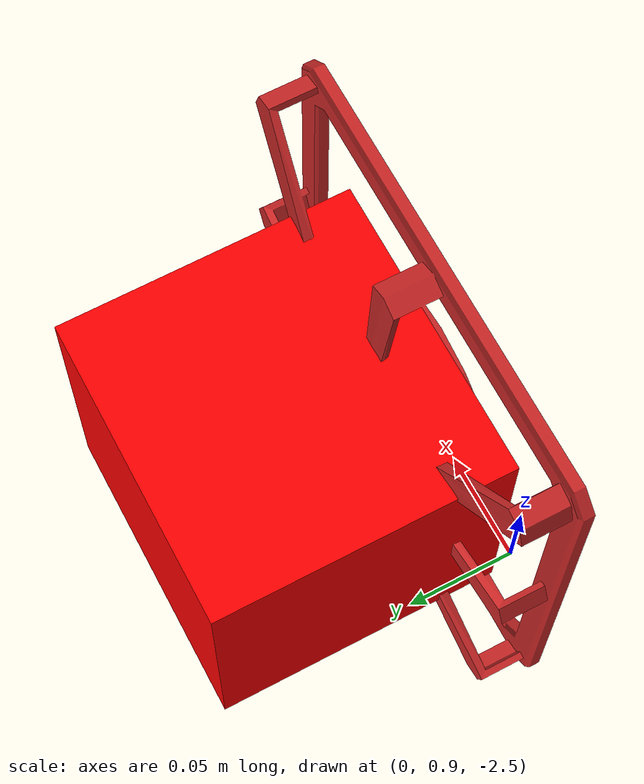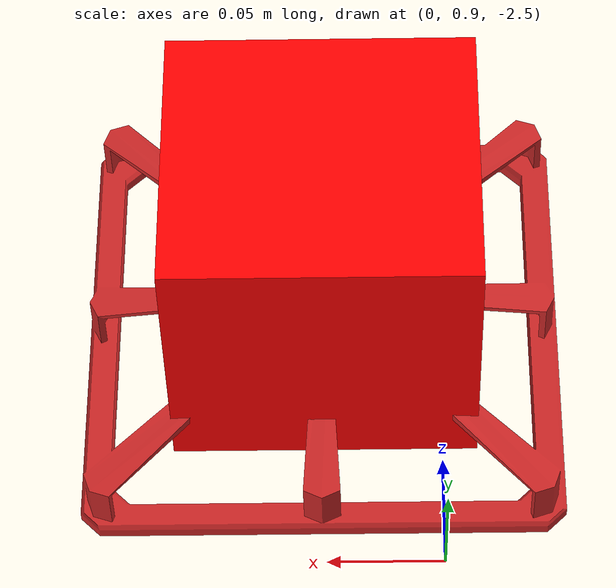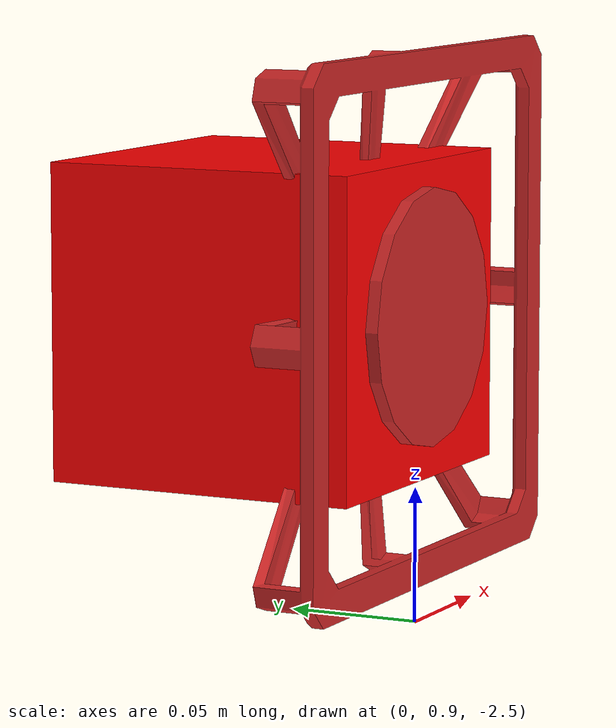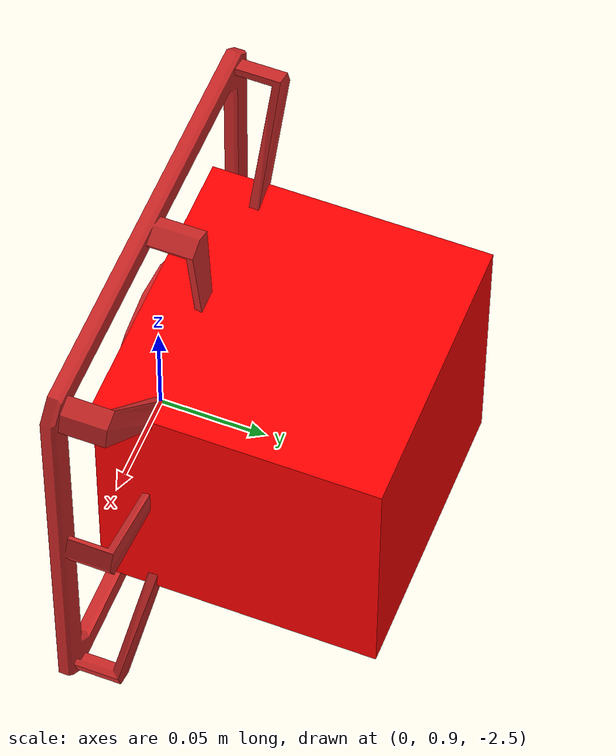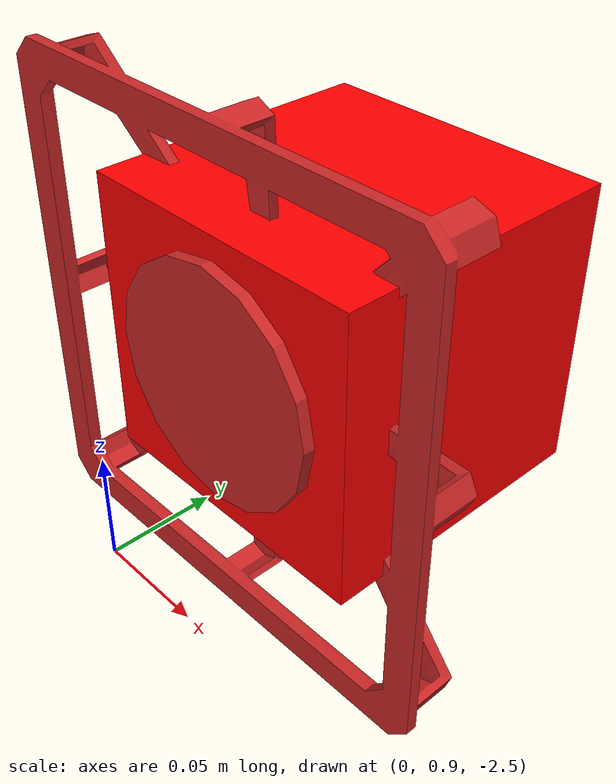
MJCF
<mujoco model="Mesh_ade0dbaf">
  <compiler autolimits="true" boundmass="0.01" angle="radian"/>
  <default>
    <default class="/">
      <default class="__VISUAL_MJT__">
        <geom contype="0" conaffinity="0" group="0" mass="1e-08"/>
      </default>
      <default class="__STRUCTURAL_MJT__">
        <geom contype="8" conaffinity="15" group="4" friction="0.90000000000000002 0.90000000000000002 0.001" density="500" solref="0.025000000000000001 1" solimp="0.998 0.998 0.001"/>
      </default>
      <default class="__DYNAMIC_MJT__">
        <geom contype="1" conaffinity="15" group="4" friction="0.90000000000000002 0.90000000000000002 0.001" density="500" solref="0.025000000000000001 1" solimp="0.998 0.998 0.001"/>
      </default>
      <default class="__ARTICULABLE_DYNAMIC_MJT__">
        <geom contype="0" conaffinity="7" group="4" friction="0.90000000000000002 0.90000000000000002 0.001" density="500" solref="0.025000000000000001 1" solimp="0.998 0.998 0.001"/>
      </default>
    </default>
  </default>
  <asset>
    <texture name="HammeredMetal_AlbedoTransparency" type="2d" file="HammeredMetal_MetallicSmoothness.png"/>
    <material name="material_HammeredMetal_AlbedoTransparency" class="/" texture="HammeredMetal_AlbedoTransparency" specular="0.5" shininess="0.5" rgba="1 1 1 1"/>
    <mesh name="Mesh_ade0dbaf_Mesh_ade0dbaf" class="/" file="Mesh_ade0dbaf_Mesh_ade0dbaf/Mesh_ade0dbaf_Mesh_ade0dbaf.obj" scale="1 1 1" inertia="legacy"/>
  </asset>
  <worldbody>
    <body name="Mesh_ade0dbaf">
      <body name="Mesh_ade0dbaf_Mesh_ade0dbaf" pos="-0 0 0" quat="1 0 0 0">
        <geom name="Mesh_ade0dbaf_Mesh_ade0dbaf" class="__VISUAL_MJT__" type="mesh" material="material_HammeredMetal_AlbedoTransparency" mesh="Mesh_ade0dbaf_Mesh_ade0dbaf"/>
        <site name="Mesh_ade0dbaf_Mesh_ade0dbaf_Receptacle_0" class="/" type="box" rgba="1 0 0 1" size="0.064072906970977783 0.061772003769874573 0.060816116631031036" pos="0.050243407487869263 0.98300904035568237 -2.3966469764709473" quat="0 1 0 0"/>
        <geom name="Mesh_ade0dbaf_Mesh_ade0dbaf_PrimitiveCollider_0" class="__DYNAMIC_MJT__" type="box" size="0.1012992262840271 0.10129908472299576 0.016042297706007957" rgba="0 1 0 1" pos="0.049300000071525574 0.93236714601516724 -2.3947000503540039" quat="0.70710684079119079 0.70710672158189924 0 0"/>
      </body>
    </body>
  </worldbody>
</mujoco>
